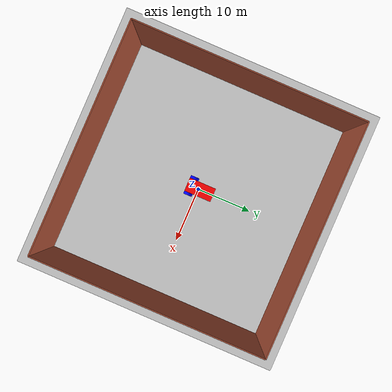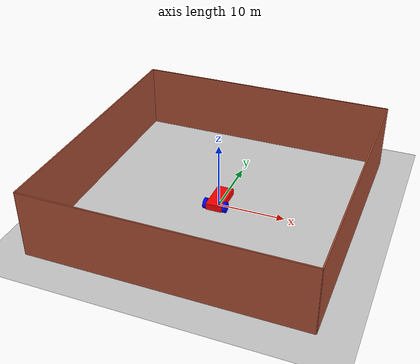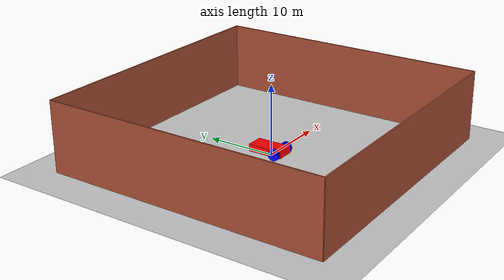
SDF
<sdf version='1.7'>
   <world name="my_world">

    <include>
      <uri>model://sun</uri>
    </include>
    <include>
      <uri>model://ground_plane</uri>
    </include>
    <include>
      <pose>0 0 0.5 0 0 0</pose>
      <uri>model://test_robo</uri>
    </include>
    <include>
      <pose>0 0 0 0 0 0</pose>
      <uri>model://test_room</uri>
    </include>
</world>
</sdf>

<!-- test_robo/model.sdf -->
<sdf version='1.7'>
  <model name='test_robo'>
    <link name='body'>
      <inertial>
        <mass>1</mass>
        <inertia>
          <ixx>0.166667</ixx>
          <ixy>0</ixy>
          <ixz>0</ixz>
          <iyy>0.166667</iyy>
          <iyz>0</iyz>
          <izz>0.166667</izz>
        </inertia>
        <pose>0 0 0 0 -0 0</pose>
      </inertial>
      <pose>0 0.3 -0.15 0 -0 0</pose>
      <gravity>1</gravity>
      <self_collide>0</self_collide>
      <kinematic>0</kinematic>
      <enable_wind>0</enable_wind>
      <visual name='visual'>
        <pose>0 0 0.5 0 -0 0</pose>
        <geometry>
          <box>
            <size>2.5 5 1</size>
          </box>
        </geometry>
        <material>
          <lighting>1</lighting>
          <script>
            <uri>file://media/materials/scripts/gazebo.material</uri>
            <name>Gazebo/Grey</name>
          </script>
          <shader type='pixel'>
            <normal_map>__default__</normal_map>
          </shader>
          <ambient>1 0 0 1</ambient>
          <diffuse>0.7 0.7 0.7 1</diffuse>
          <specular>0.01 0.01 0.01 1</specular>
          <emissive>0 0 0 1</emissive>
        </material>
        <transparency>0</transparency>
        <cast_shadows>1</cast_shadows>
      </visual>
      <collision name='collision'>
        <laser_retro>0</laser_retro>
        <max_contacts>10</max_contacts>
        <pose>0 0 0.5 0 -0 0</pose>
        <geometry>
          <box>
            <size>2.5 5 1</size>
          </box>
        </geometry>
        <surface>
          <friction>
            <ode>
              <mu>1</mu>
              <mu2>1</mu2>
              <fdir1>0 0 0</fdir1>
              <slip1>0</slip1>
              <slip2>0</slip2>
            </ode>
            <torsional>
              <coefficient>1</coefficient>
              <patch_radius>0</patch_radius>
              <surface_radius>0</surface_radius>
              <use_patch_radius>1</use_patch_radius>
              <ode>
                <slip>0</slip>
              </ode>
            </torsional>
          </friction>
          <bounce>
            <restitution_coefficient>0</restitution_coefficient>
            <threshold>1e+06</threshold>
          </bounce>
          <contact>
            <collide_without_contact>0</collide_without_contact>
            <collide_without_contact_bitmask>1</collide_without_contact_bitmask>
            <collide_bitmask>1</collide_bitmask>
            <ode>
              <soft_cfm>0</soft_cfm>
              <soft_erp>0.2</soft_erp>
              <kp>1e+13</kp>
              <kd>1</kd>
              <max_vel>0.01</max_vel>
              <min_depth>0</min_depth>
            </ode>
            <bullet>
              <split_impulse>1</split_impulse>
              <split_impulse_penetration_threshold>-0.01</split_impulse_penetration_threshold>
              <soft_cfm>0</soft_cfm>
              <soft_erp>0.2</soft_erp>
              <kp>1e+13</kp>
              <kd>1</kd>
            </bullet>
          </contact>
        </surface>
      </collision>
    </link>
    <link name='castor'>
      <inertial>
        <mass>1</mass>
        <inertia>
          <ixx>0.1</ixx>
          <ixy>0</ixy>
          <ixz>0</ixz>
          <iyy>0.1</iyy>
          <iyz>0</iyz>
          <izz>0.1</izz>
        </inertia>
        <pose>0 0 0 0 -0 0</pose>
      </inertial>
      <pose>0 2.5 -0.15 0 -0 0</pose>
      <gravity>1</gravity>
      <self_collide>0</self_collide>
      <kinematic>0</kinematic>
      <enable_wind>0</enable_wind>
      <visual name='visual'>
        <pose>0 0 0 0 -0 0</pose>
        <geometry>
          <sphere>
            <radius>0.3</radius>
          </sphere>
        </geometry>
        <material>
          <lighting>1</lighting>
          <script>
            <uri>file://media/materials/scripts/gazebo.material</uri>
            <name>Gazebo/Grey</name>
          </script>
          <shader type='pixel'>
            <normal_map>__default__</normal_map>
          </shader>
          <ambient>0 1 0 1</ambient>
          <diffuse>0.7 0.7 0.7 1</diffuse>
          <specular>0.01 0.01 0.01 1</specular>
          <emissive>0 0 0 1</emissive>
        </material>
        <transparency>0</transparency>
        <cast_shadows>1</cast_shadows>
      </visual>
      <collision name='collision'>
        <laser_retro>0</laser_retro>
        <max_contacts>10</max_contacts>
        <pose>0 0 0 0 -0 0</pose>
        <geometry>
          <sphere>
            <radius>0.3</radius>
          </sphere>
        </geometry>
        <surface>
          <friction>
            <ode>
              <mu>1</mu>
              <mu2>1</mu2>
              <fdir1>0 0 0</fdir1>
              <slip1>0</slip1>
              <slip2>0</slip2>
            </ode>
            <torsional>
              <coefficient>1</coefficient>
              <patch_radius>0</patch_radius>
              <surface_radius>0</surface_radius>
              <use_patch_radius>1</use_patch_radius>
              <ode>
                <slip>0</slip>
              </ode>
            </torsional>
          </friction>
          <bounce>
            <restitution_coefficient>0</restitution_coefficient>
            <threshold>1e+06</threshold>
          </bounce>
          <contact>
            <collide_without_contact>0</collide_without_contact>
            <collide_without_contact_bitmask>1</collide_without_contact_bitmask>
            <collide_bitmask>1</collide_bitmask>
            <ode>
              <soft_cfm>0</soft_cfm>
              <soft_erp>0.2</soft_erp>
              <kp>1e+13</kp>
              <kd>1</kd>
              <max_vel>0.01</max_vel>
              <min_depth>0</min_depth>
            </ode>
            <bullet>
              <split_impulse>1</split_impulse>
              <split_impulse_penetration_threshold>-0.01</split_impulse_penetration_threshold>
              <soft_cfm>0</soft_cfm>
              <soft_erp>0.2</soft_erp>
              <kp>1e+13</kp>
              <kd>1</kd>
            </bullet>
          </contact>
        </surface>
      </collision>
    </link>
    <link name='left'>
      <inertial>
        <mass>1</mass>
        <inertia>
          <ixx>0.145833</ixx>
          <ixy>0</ixy>
          <ixz>0</ixz>
          <iyy>0.145833</iyy>
          <iyz>0</iyz>
          <izz>0.125</izz>
        </inertia>
        <pose>0 0 0 0 -0 0</pose>
      </inertial>
      <pose>-1.50064 -1.4 0.35 0 1.57 0</pose>
      <gravity>1</gravity>
      <self_collide>0</self_collide>
      <kinematic>0</kinematic>
      <enable_wind>0</enable_wind>
      <visual name='visual'>
        <pose>0 0 0 0 -0 0</pose>
        <geometry>
          <cylinder>
            <radius>0.8</radius>
            <length>0.5</length>
          </cylinder>
        </geometry>
        <material>
          <lighting>1</lighting>
          <script>
            <uri>file://media/materials/scripts/gazebo.material</uri>
            <name>Gazebo/Grey</name>
          </script>
          <shader type='pixel'>
            <normal_map>__default__</normal_map>
          </shader>
          <ambient>0 0 1 1</ambient>
          <diffuse>0.7 0.7 0.7 1</diffuse>
          <specular>0.01 0.01 0.01 1</specular>
          <emissive>0 0 0 1</emissive>
        </material>
        <transparency>0</transparency>
        <cast_shadows>1</cast_shadows>
      </visual>
      <collision name='collision'>
        <laser_retro>0</laser_retro>
        <max_contacts>10</max_contacts>
        <pose>0 0 0 0 -0 0</pose>
        <geometry>
          <cylinder>
            <radius>0.8</radius>
            <length>0.5</length>
          </cylinder>
        </geometry>
        <surface>
          <friction>
            <ode>
              <mu>1</mu>
              <mu2>1</mu2>
              <fdir1>0 0 0</fdir1>
              <slip1>0</slip1>
              <slip2>0</slip2>
            </ode>
            <torsional>
              <coefficient>1</coefficient>
              <patch_radius>0</patch_radius>
              <surface_radius>0</surface_radius>
              <use_patch_radius>1</use_patch_radius>
              <ode>
                <slip>0</slip>
              </ode>
            </torsional>
          </friction>
          <bounce>
            <restitution_coefficient>0</restitution_coefficient>
            <threshold>1e+06</threshold>
          </bounce>
          <contact>
            <collide_without_contact>0</collide_without_contact>
            <collide_without_contact_bitmask>1</collide_without_contact_bitmask>
            <collide_bitmask>1</collide_bitmask>
            <ode>
              <soft_cfm>0</soft_cfm>
              <soft_erp>0.2</soft_erp>
              <kp>1e+13</kp>
              <kd>1</kd>
              <max_vel>0.01</max_vel>
              <min_depth>0</min_depth>
            </ode>
            <bullet>
              <split_impulse>1</split_impulse>
              <split_impulse_penetration_threshold>-0.01</split_impulse_penetration_threshold>
              <soft_cfm>0</soft_cfm>
              <soft_erp>0.2</soft_erp>
              <kp>1e+13</kp>
              <kd>1</kd>
            </bullet>
          </contact>
        </surface>
      </collision>
    </link>
    <link name='right'>
      <inertial>
        <mass>1</mass>
        <inertia>
          <ixx>0.145833</ixx>
          <ixy>0</ixy>
          <ixz>0</ixz>
          <iyy>0.145833</iyy>
          <iyz>0</iyz>
          <izz>0.125</izz>
        </inertia>
        <pose>0 0 0 0 -0 0</pose>
      </inertial>
      <pose>1.50064 -1.4 0.35 0 1.57 0</pose>
      <gravity>1</gravity>
      <self_collide>0</self_collide>
      <kinematic>0</kinematic>
      <enable_wind>0</enable_wind>
      <visual name='visual'>
        <pose>0 0 0 0 -0 0</pose>
        <geometry>
          <cylinder>
            <radius>0.8</radius>
            <length>0.5</length>
          </cylinder>
        </geometry>
        <material>
          <lighting>1</lighting>
          <script>
            <uri>file://media/materials/scripts/gazebo.material</uri>
            <name>Gazebo/Grey</name>
          </script>
          <shader type='pixel'>
            <normal_map>__default__</normal_map>
          </shader>
          <ambient>0 0 1 1</ambient>
          <diffuse>0.7 0.7 0.7 1</diffuse>
          <specular>0.01 0.01 0.01 1</specular>
          <emissive>0 0 0 1</emissive>
        </material>
        <transparency>0</transparency>
        <cast_shadows>1</cast_shadows>
      </visual>
      <collision name='collision'>
        <laser_retro>0</laser_retro>
        <max_contacts>10</max_contacts>
        <pose>0 0 0 0 -0 0</pose>
        <geometry>
          <cylinder>
            <radius>0.8</radius>
            <length>0.5</length>
          </cylinder>
        </geometry>
        <surface>
          <friction>
            <ode>
              <mu>1</mu>
              <mu2>1</mu2>
              <fdir1>0 0 0</fdir1>
              <slip1>0</slip1>
              <slip2>0</slip2>
            </ode>
            <torsional>
              <coefficient>1</coefficient>
              <patch_radius>0</patch_radius>
              <surface_radius>0</surface_radius>
              <use_patch_radius>1</use_patch_radius>
              <ode>
                <slip>0</slip>
              </ode>
            </torsional>
          </friction>
          <bounce>
            <restitution_coefficient>0</restitution_coefficient>
            <threshold>1e+06</threshold>
          </bounce>
          <contact>
            <collide_without_contact>0</collide_without_contact>
            <collide_without_contact_bitmask>1</collide_without_contact_bitmask>
            <collide_bitmask>1</collide_bitmask>
            <ode>
              <soft_cfm>0</soft_cfm>
              <soft_erp>0.2</soft_erp>
              <kp>1e+13</kp>
              <kd>1</kd>
              <max_vel>0.01</max_vel>
              <min_depth>0</min_depth>
            </ode>
            <bullet>
              <split_impulse>1</split_impulse>
              <split_impulse_penetration_threshold>-0.01</split_impulse_penetration_threshold>
              <soft_cfm>0</soft_cfm>
              <soft_erp>0.2</soft_erp>
              <kp>1e+13</kp>
              <kd>1</kd>
            </bullet>
          </contact>
        </surface>
      </collision>
    </link>
    <joint name='castor_joint' type='ball'>
      <parent>body</parent>
      <child>castor</child>
      <pose>0 0 0 0 -0 0</pose>
      <physics>
        <ode>
          <limit>
            <cfm>0</cfm>
            <erp>0.2</erp>
          </limit>
          <suspension>
            <cfm>0</cfm>
            <erp>0.2</erp>
          </suspension>
        </ode>
      </physics>
    </joint>
    <joint name='left_joint' type='revolute'>
      <parent>body</parent>
      <child>left</child>
      <pose>0 0 0 0 -0 0</pose>
      <axis>
        <xyz>-0 -0 -1</xyz>
        <limit>
          <lower>-1.79769e+308</lower>
          <upper>1.79769e+308</upper>
          <effort>-1</effort>
          <velocity>-1</velocity>
        </limit>
        <dynamics>
          <spring_reference>0</spring_reference>
          <spring_stiffness>0</spring_stiffness>
          <damping>0</damping>
          <friction>0</friction>
        </dynamics>
      </axis>
      <physics>
        <ode>
          <limit>
            <cfm>0</cfm>
            <erp>0.2</erp>
          </limit>
          <suspension>
            <cfm>0</cfm>
            <erp>0.2</erp>
          </suspension>
        </ode>
      </physics>
    </joint>
    <joint name='right_joint' type='revolute'>
      <parent>body</parent>
      <child>right</child>
      <pose>0 0 0 0 -0 0</pose>
      <axis>
        <xyz>0 0 1</xyz>
        <limit>
          <lower>-1.79769e+308</lower>
          <upper>1.79769e+308</upper>
          <effort>-1</effort>
          <velocity>-1</velocity>
        </limit>
        <dynamics>
          <spring_reference>0</spring_reference>
          <spring_stiffness>0</spring_stiffness>
          <damping>0</damping>
          <friction>0</friction>
        </dynamics>
      </axis>
      <physics>
        <ode>
          <limit>
            <cfm>0</cfm>
            <erp>0.2</erp>
          </limit>
          <suspension>
            <cfm>0</cfm>
            <erp>0.2</erp>
          </suspension>
        </ode>
      </physics>
    </joint>
    <static>0</static>
    <allow_auto_disable>1</allow_auto_disable>
    <plugin name='diff_drive' filename='libgazebo_ros_diff_drive.so'>
      <ros>
        <namespace>/test_robo</namespace>
      </ros>
      <left_joint>left_joint</left_joint>
      <right_joint>right_joint</right_joint>
      <wheel_separation>2.5</wheel_separation>
      <wheel_diameter>1.6</wheel_diameter>
      <max_wheel_torque>20</max_wheel_torque>
      <max_wheel_acceleration>1.0</max_wheel_acceleration>
      <publish_odom>1</publish_odom>
      <publish_odom_tf>1</publish_odom_tf>
      <odometry_frame>odom_demo</odometry_frame>
      <robot_base_frame>body</robot_base_frame>
    </plugin>
  </model>
</sdf>

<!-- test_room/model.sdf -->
<sdf version='1.7'>
  <model name='test_room'>
    <pose>0 0 0 0 -0 0</pose>
    <link name='Wall_11'>
      <collision name='Wall_11_Collision'>
        <geometry>
          <box>
            <size>40 0.2 10</size>
          </box>
        </geometry>
        <pose>0 0 5 0 -0 0</pose>
      </collision>
      <visual name='Wall_11_Visual'>
        <pose>0 0 5 0 -0 0</pose>
        <geometry>
          <box>
            <size>40 0.2 10</size>
          </box>
        </geometry>
        <material>
          <script>
            <uri>file://media/materials/scripts/gazebo.material</uri>
            <name>Gazebo/Bricks</name>
          </script>
          <ambient>1 1 1 1</ambient>
        </material>
        <meta>
          <layer>0</layer>
        </meta>
      </visual>
      <pose>20 0 0 0 -0 -1.5708</pose>
    </link>
    <link name='Wall_5'>
      <collision name='Wall_5_Collision'>
        <geometry>
          <box>
            <size>40 0.2 10</size>
          </box>
        </geometry>
        <pose>0 0 5 0 -0 0</pose>
      </collision>
      <visual name='Wall_5_Visual'>
        <pose>0 0 5 0 -0 0</pose>
        <geometry>
          <box>
            <size>40 0.2 10</size>
          </box>
        </geometry>
        <material>
          <script>
            <uri>file://media/materials/scripts/gazebo.material</uri>
            <name>Gazebo/Bricks</name>
          </script>
          <ambient>1 1 1 1</ambient>
        </material>
        <meta>
          <layer>0</layer>
        </meta>
      </visual>
      <pose>0 -20 0 0 -0 0</pose>
    </link>
    <link name='Wall_7'>
      <collision name='Wall_7_Collision'>
        <geometry>
          <box>
            <size>40 0.2 10</size>
          </box>
        </geometry>
        <pose>0 0 5 0 -0 0</pose>
      </collision>
      <visual name='Wall_7_Visual'>
        <pose>0 0 5 0 -0 0</pose>
        <geometry>
          <box>
            <size>40 0.2 10</size>
          </box>
        </geometry>
        <material>
          <script>
            <uri>file://media/materials/scripts/gazebo.material</uri>
            <name>Gazebo/Bricks</name>
          </script>
          <ambient>1 1 1 1</ambient>
        </material>
        <meta>
          <layer>0</layer>
        </meta>
      </visual>
      <pose>0 20 0 0 -0 0</pose>
    </link>
    <link name='Wall_9'>
      <collision name='Wall_9_Collision'>
        <geometry>
          <box>
            <size>40 0.2 10</size>
          </box>
        </geometry>
        <pose>0 0 5 0 -0 0</pose>
      </collision>
      <visual name='Wall_9_Visual'>
        <pose>0 0 5 0 -0 0</pose>
        <geometry>
          <box>
            <size>40 0.2 10</size>
          </box>
        </geometry>
        <material>
          <script>
            <uri>file://media/materials/scripts/gazebo.material</uri>
            <name>Gazebo/Bricks</name>
          </script>
          <ambient>1 1 1 1</ambient>
        </material>
        <meta>
          <layer>0</layer>
        </meta>
      </visual>
      <pose>-20 0 0 0 -0 -1.5708</pose>
    </link>
    <static>1</static>
  </model>
</sdf>
